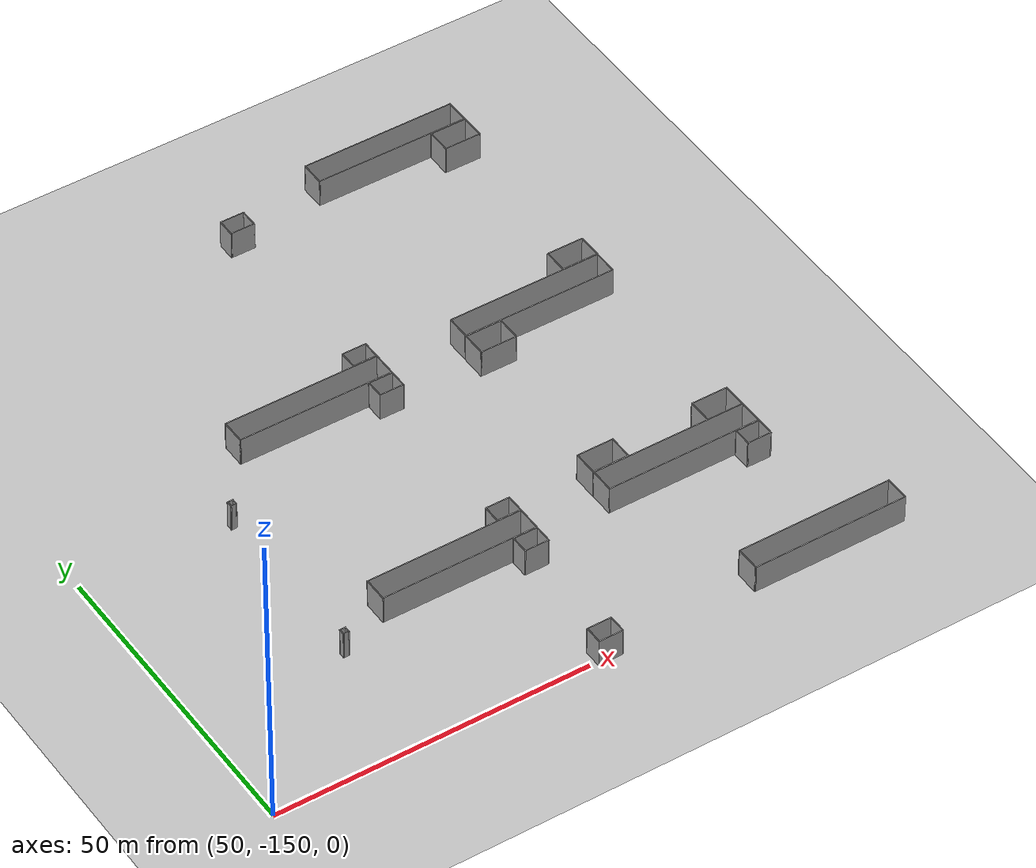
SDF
<sdf version="1.6">
 <world name="default">
  <model name="ground_plane">
   <static>1</static>
   <link name="link">
    <collision name="collision">
     <geometry><plane><normal>0 0 1</normal><size>320 320</size></plane></geometry>
     <surface>
      <contact><collide_bitmask>65535</collide_bitmask></contact>
      <friction><ode><mu>100</mu><mu2>50</mu2></ode></friction>
     </surface>
    </collision>
    <visual name="visual">
     <cast_shadows>0</cast_shadows>
     <geometry><plane><normal>0 0 1</normal><size>320 320</size></plane></geometry>
     <material>
      <script><uri>file://media/materials/scripts/gazebo.material</uri><name>Gazebo/Grey</name></script>
     </material>
    </visual>
   </link>
  </model>
  <model name="base4x25_7">
   <pose>130.931 -50.5067 0 0 -0 0</pose>
   <link name="Wall_11">
    <collision name="Wall_11_Collision">
     <geometry><box><size>4 0.15 6.555</size></box></geometry>
     <pose>0 0 1.25 0 -0 0</pose>
    </collision>
    <visual name="Wall_11_Visual">
     <pose>0 0 1.25 0 -0 0</pose>
     <geometry><box><size>4 0.15 6.555</size></box></geometry>
     <material>
      <script><uri>file://media/materials/scripts/gazebo.material</uri><name>Gazebo/Grey</name></script>
      <ambient>1 1 1 1</ambient>
     </material>
     <meta><layer>0</layer></meta>
    </visual>
    <pose>-12.425 0 0 0 -0 -1.5708</pose>
   </link>
   <link name="Wall_12">
    <collision name="Wall_12_Collision">
     <geometry><box><size>25 0.15 6.555</size></box></geometry>
     <pose>0 0 1.25 0 -0 0</pose>
    </collision>
    <visual name="Wall_12_Visual">
     <pose>0 0 1.25 0 -0 0</pose>
     <geometry><box><size>25 0.15 6.555</size></box></geometry>
     <material>
      <script><uri>file://media/materials/scripts/gazebo.material</uri><name>Gazebo/Grey</name></script>
      <ambient>1 1 1 1</ambient>
     </material>
     <meta><layer>0</layer></meta>
    </visual>
    <pose>0 -1.925 0 0 -0 0</pose>
   </link>
   <link name="Wall_13">
    <collision name="Wall_13_Collision">
     <geometry><box><size>4 0.15 6.555</size></box></geometry>
     <pose>0 0 1.25 0 -0 0</pose>
    </collision>
    <visual name="Wall_13_Visual">
     <pose>0 0 1.25 0 -0 0</pose>
     <geometry><box><size>4 0.15 6.555</size></box></geometry>
     <material>
      <script><uri>file://media/materials/scripts/gazebo.material</uri><name>Gazebo/Grey</name></script>
      <ambient>1 1 1 1</ambient>
     </material>
     <meta><layer>0</layer></meta>
    </visual>
    <pose>12.425 0 0 0 -0 1.5708</pose>
   </link>
   <link name="Wall_14">
    <collision name="Wall_14_Collision">
     <geometry><box><size>25 0.15 6.555</size></box></geometry>
     <pose>0 0 1.25 0 -0 0</pose>
    </collision>
    <visual name="Wall_14_Visual">
     <pose>0 0 1.25 0 -0 0</pose>
     <geometry><box><size>25 0.15 6.555</size></box></geometry>
     <material>
      <script><uri>file://media/materials/scripts/gazebo.material</uri><name>Gazebo/Grey</name></script>
      <ambient>1 1 1 1</ambient>
     </material>
     <meta><layer>0</layer></meta>
    </visual>
    <pose>0 1.925 0 0 -0 3.14159</pose>
   </link>
   <static>1</static>
  </model>
  <model name="base4x25_8">
   <pose>130.98 -88.9608 0 0 -0 0</pose>
   <link name="Wall_11">
    <collision name="Wall_11_Collision">
     <geometry><box><size>4 0.15 6.555</size></box></geometry>
     <pose>0 0 1.25 0 -0 0</pose>
    </collision>
    <visual name="Wall_11_Visual">
     <pose>0 0 1.25 0 -0 0</pose>
     <geometry><box><size>4 0.15 6.555</size></box></geometry>
     <material>
      <script><uri>file://media/materials/scripts/gazebo.material</uri><name>Gazebo/Grey</name></script>
      <ambient>1 1 1 1</ambient>
     </material>
     <meta><layer>0</layer></meta>
    </visual>
    <pose>-12.425 0 0 0 -0 -1.5708</pose>
   </link>
   <link name="Wall_12">
    <collision name="Wall_12_Collision">
     <geometry><box><size>25 0.15 6.555</size></box></geometry>
     <pose>0 0 1.25 0 -0 0</pose>
    </collision>
    <visual name="Wall_12_Visual">
     <pose>0 0 1.25 0 -0 0</pose>
     <geometry><box><size>25 0.15 6.555</size></box></geometry>
     <material>
      <script><uri>file://media/materials/scripts/gazebo.material</uri><name>Gazebo/Grey</name></script>
      <ambient>1 1 1 1</ambient>
     </material>
     <meta><layer>0</layer></meta>
    </visual>
    <pose>0 -1.925 0 0 -0 0</pose>
   </link>
   <link name="Wall_13">
    <collision name="Wall_13_Collision">
     <geometry><box><size>4 0.15 6.555</size></box></geometry>
     <pose>0 0 1.25 0 -0 0</pose>
    </collision>
    <visual name="Wall_13_Visual">
     <pose>0 0 1.25 0 -0 0</pose>
     <geometry><box><size>4 0.15 6.555</size></box></geometry>
     <material>
      <script><uri>file://media/materials/scripts/gazebo.material</uri><name>Gazebo/Grey</name></script>
      <ambient>1 1 1 1</ambient>
     </material>
     <meta><layer>0</layer></meta>
    </visual>
    <pose>12.425 0 0 0 -0 1.5708</pose>
   </link>
   <link name="Wall_14">
    <collision name="Wall_14_Collision">
     <geometry><box><size>25 0.15 6.555</size></box></geometry>
     <pose>0 0 1.25 0 -0 0</pose>
    </collision>
    <visual name="Wall_14_Visual">
     <pose>0 0 1.25 0 -0 0</pose>
     <geometry><box><size>25 0.15 6.555</size></box></geometry>
     <material>
      <script><uri>file://media/materials/scripts/gazebo.material</uri><name>Gazebo/Grey</name></script>
      <ambient>1 1 1 1</ambient>
     </material>
     <meta><layer>0</layer></meta>
    </visual>
    <pose>0 1.925 0 0 -0 3.14159</pose>
   </link>
   <static>1</static>
  </model>
  <model name="base4x25_9">
   <pose>130.882 -125.263 0 0 -0 0</pose>
   <link name="Wall_11">
    <collision name="Wall_11_Collision">
     <geometry><box><size>4 0.15 6.555</size></box></geometry>
     <pose>0 0 1.25 0 -0 0</pose>
    </collision>
    <visual name="Wall_11_Visual">
     <pose>0 0 1.25 0 -0 0</pose>
     <geometry><box><size>4 0.15 6.555</size></box></geometry>
     <material>
      <script><uri>file://media/materials/scripts/gazebo.material</uri><name>Gazebo/Grey</name></script>
      <ambient>1 1 1 1</ambient>
     </material>
     <meta><layer>0</layer></meta>
    </visual>
    <pose>-12.425 0 0 0 -0 -1.5708</pose>
   </link>
   <link name="Wall_12">
    <collision name="Wall_12_Collision">
     <geometry><box><size>25 0.15 6.555</size></box></geometry>
     <pose>0 0 1.25 0 -0 0</pose>
    </collision>
    <visual name="Wall_12_Visual">
     <pose>0 0 1.25 0 -0 0</pose>
     <geometry><box><size>25 0.15 6.555</size></box></geometry>
     <material>
      <script><uri>file://media/materials/scripts/gazebo.material</uri><name>Gazebo/Grey</name></script>
      <ambient>1 1 1 1</ambient>
     </material>
     <meta><layer>0</layer></meta>
    </visual>
    <pose>0 -1.925 0 0 -0 0</pose>
   </link>
   <link name="Wall_13">
    <collision name="Wall_13_Collision">
     <geometry><box><size>4 0.15 6.555</size></box></geometry>
     <pose>0 0 1.25 0 -0 0</pose>
    </collision>
    <visual name="Wall_13_Visual">
     <pose>0 0 1.25 0 -0 0</pose>
     <geometry><box><size>4 0.15 6.555</size></box></geometry>
     <material>
      <script><uri>file://media/materials/scripts/gazebo.material</uri><name>Gazebo/Grey</name></script>
      <ambient>1 1 1 1</ambient>
     </material>
     <meta><layer>0</layer></meta>
    </visual>
    <pose>12.425 0 0 0 -0 1.5708</pose>
   </link>
   <link name="Wall_14">
    <collision name="Wall_14_Collision">
     <geometry><box><size>25 0.15 6.555</size></box></geometry>
     <pose>0 0 1.25 0 -0 0</pose>
    </collision>
    <visual name="Wall_14_Visual">
     <pose>0 0 1.25 0 -0 0</pose>
     <geometry><box><size>25 0.15 6.555</size></box></geometry>
     <material>
      <script><uri>file://media/materials/scripts/gazebo.material</uri><name>Gazebo/Grey</name></script>
      <ambient>1 1 1 1</ambient>
     </material>
     <meta><layer>0</layer></meta>
    </visual>
    <pose>0 1.925 0 0 -0 3.14159</pose>
   </link>
   <static>1</static>
  </model>
  <model name="base4x25_15">
   <pose>93.5015 -89.5283 0 0 -0 0</pose>
   <link name="Wall_11">
    <collision name="Wall_11_Collision">
     <geometry><box><size>4 0.15 6.555</size></box></geometry>
     <pose>0 0 1.25 0 -0 0</pose>
    </collision>
    <visual name="Wall_11_Visual">
     <pose>0 0 1.25 0 -0 0</pose>
     <geometry><box><size>4 0.15 6.555</size></box></geometry>
     <material>
      <script><uri>file://media/materials/scripts/gazebo.material</uri><name>Gazebo/Grey</name></script>
      <ambient>1 1 1 1</ambient>
     </material>
     <meta><layer>0</layer></meta>
    </visual>
    <pose>-12.425 0 0 0 -0 -1.5708</pose>
   </link>
   <link name="Wall_12">
    <collision name="Wall_12_Collision">
     <geometry><box><size>25 0.15 6.555</size></box></geometry>
     <pose>0 0 1.25 0 -0 0</pose>
    </collision>
    <visual name="Wall_12_Visual">
     <pose>0 0 1.25 0 -0 0</pose>
     <geometry><box><size>25 0.15 6.555</size></box></geometry>
     <material>
      <script><uri>file://media/materials/scripts/gazebo.material</uri><name>Gazebo/Grey</name></script>
      <ambient>1 1 1 1</ambient>
     </material>
     <meta><layer>0</layer></meta>
    </visual>
    <pose>0 -1.925 0 0 -0 0</pose>
   </link>
   <link name="Wall_13">
    <collision name="Wall_13_Collision">
     <geometry><box><size>4 0.15 6.555</size></box></geometry>
     <pose>0 0 1.25 0 -0 0</pose>
    </collision>
    <visual name="Wall_13_Visual">
     <pose>0 0 1.25 0 -0 0</pose>
     <geometry><box><size>4 0.15 6.555</size></box></geometry>
     <material>
      <script><uri>file://media/materials/scripts/gazebo.material</uri><name>Gazebo/Grey</name></script>
      <ambient>1 1 1 1</ambient>
     </material>
     <meta><layer>0</layer></meta>
    </visual>
    <pose>12.425 0 0 0 -0 1.5708</pose>
   </link>
   <link name="Wall_14">
    <collision name="Wall_14_Collision">
     <geometry><box><size>25 0.15 6.555</size></box></geometry>
     <pose>0 0 1.25 0 -0 0</pose>
    </collision>
    <visual name="Wall_14_Visual">
     <pose>0 0 1.25 0 -0 0</pose>
     <geometry><box><size>25 0.15 6.555</size></box></geometry>
     <material>
      <script><uri>file://media/materials/scripts/gazebo.material</uri><name>Gazebo/Grey</name></script>
      <ambient>1 1 1 1</ambient>
     </material>
     <meta><layer>0</layer></meta>
    </visual>
    <pose>0 1.925 0 0 -0 3.14159</pose>
   </link>
   <static>1</static>
  </model>
  <model name="base4x25_16">
   <pose>93.619 -125.961 0 0 -0 0</pose>
   <link name="Wall_11">
    <collision name="Wall_11_Collision">
     <geometry><box><size>4 0.15 6.555</size></box></geometry>
     <pose>0 0 1.25 0 -0 0</pose>
    </collision>
    <visual name="Wall_11_Visual">
     <pose>0 0 1.25 0 -0 0</pose>
     <geometry><box><size>4 0.15 6.555</size></box></geometry>
     <material>
      <script><uri>file://media/materials/scripts/gazebo.material</uri><name>Gazebo/Grey</name></script>
      <ambient>1 1 1 1</ambient>
     </material>
     <meta><layer>0</layer></meta>
    </visual>
    <pose>-12.425 0 0 0 -0 -1.5708</pose>
   </link>
   <link name="Wall_12">
    <collision name="Wall_12_Collision">
     <geometry><box><size>25 0.15 6.555</size></box></geometry>
     <pose>0 0 1.25 0 -0 0</pose>
    </collision>
    <visual name="Wall_12_Visual">
     <pose>0 0 1.25 0 -0 0</pose>
     <geometry><box><size>25 0.15 6.555</size></box></geometry>
     <material>
      <script><uri>file://media/materials/scripts/gazebo.material</uri><name>Gazebo/Grey</name></script>
      <ambient>1 1 1 1</ambient>
     </material>
     <meta><layer>0</layer></meta>
    </visual>
    <pose>0 -1.925 0 0 -0 0</pose>
   </link>
   <link name="Wall_13">
    <collision name="Wall_13_Collision">
     <geometry><box><size>4 0.15 6.555</size></box></geometry>
     <pose>0 0 1.25 0 -0 0</pose>
    </collision>
    <visual name="Wall_13_Visual">
     <pose>0 0 1.25 0 -0 0</pose>
     <geometry><box><size>4 0.15 6.555</size></box></geometry>
     <material>
      <script><uri>file://media/materials/scripts/gazebo.material</uri><name>Gazebo/Grey</name></script>
      <ambient>1 1 1 1</ambient>
     </material>
     <meta><layer>0</layer></meta>
    </visual>
    <pose>12.425 0 0 0 -0 1.5708</pose>
   </link>
   <link name="Wall_14">
    <collision name="Wall_14_Collision">
     <geometry><box><size>25 0.15 6.555</size></box></geometry>
     <pose>0 0 1.25 0 -0 0</pose>
    </collision>
    <visual name="Wall_14_Visual">
     <pose>0 0 1.25 0 -0 0</pose>
     <geometry><box><size>25 0.15 6.555</size></box></geometry>
     <material>
      <script><uri>file://media/materials/scripts/gazebo.material</uri><name>Gazebo/Grey</name></script>
      <ambient>1 1 1 1</ambient>
     </material>
     <meta><layer>0</layer></meta>
    </visual>
    <pose>0 1.925 0 0 -0 3.14159</pose>
   </link>
   <static>1</static>
  </model>
  <model name="box_1mx1m_clone_9">
   <pose>73.696 -101.279 0 0 -0 0</pose>
   <link name="Wall_10">
    <collision name="Wall_10_Collision">
     <geometry><box><size>1 0.15 6.555</size></box></geometry>
     <pose>0 0 1.25 0 -0 0</pose>
    </collision>
    <visual name="Wall_10_Visual">
     <pose>0 0 1.25 0 -0 0</pose>
     <geometry><box><size>1 0.15 6.555</size></box></geometry>
     <material>
      <script><uri>file://media/materials/scripts/gazebo.material</uri><name>Gazebo/Grey</name></script>
      <ambient>1 1 1 1</ambient>
     </material>
     <meta><layer>0</layer></meta>
    </visual>
    <pose>-0.425 0 0 0 -0 -1.5708</pose>
   </link>
   <link name="Wall_11">
    <collision name="Wall_11_Collision">
     <geometry><box><size>1 0.15 6.555</size></box></geometry>
     <pose>0 0 1.25 0 -0 0</pose>
    </collision>
    <visual name="Wall_11_Visual">
     <pose>0 0 1.25 0 -0 0</pose>
     <geometry><box><size>1 0.15 6.555</size></box></geometry>
     <material>
      <script><uri>file://media/materials/scripts/gazebo.material</uri><name>Gazebo/Grey</name></script>
      <ambient>1 1 1 1</ambient>
     </material>
     <meta><layer>0</layer></meta>
    </visual>
    <pose>0 -0.425 0 0 -0 0</pose>
   </link>
   <link name="Wall_12">
    <collision name="Wall_12_Collision">
     <geometry><box><size>1 0.15 6.555</size></box></geometry>
     <pose>0 0 1.25 0 -0 0</pose>
    </collision>
    <visual name="Wall_12_Visual">
     <pose>0 0 1.25 0 -0 0</pose>
     <geometry><box><size>1 0.15 6.555</size></box></geometry>
     <material>
      <script><uri>file://media/materials/scripts/gazebo.material</uri><name>Gazebo/Grey</name></script>
      <ambient>1 1 1 1</ambient>
     </material>
     <meta><layer>0</layer></meta>
    </visual>
    <pose>0.425 0 0 0 -0 1.5708</pose>
   </link>
   <link name="Wall_13">
    <collision name="Wall_13_Collision">
     <geometry><box><size>1 0.15 6.555</size></box></geometry>
     <pose>0 0 1.25 0 -0 0</pose>
    </collision>
    <visual name="Wall_13_Visual">
     <pose>0 0 1.25 0 -0 0</pose>
     <geometry><box><size>1 0.15 6.555</size></box></geometry>
     <material>
      <script><uri>file://media/materials/scripts/gazebo.material</uri><name>Gazebo/Grey</name></script>
      <ambient>1 1 1 1</ambient>
     </material>
     <meta><layer>0</layer></meta>
    </visual>
    <pose>0 0.425 0 0 -0 3.14159</pose>
   </link>
   <static>1</static>
  </model>
  <model name="box_1mx1m_clone_10">
   <pose>73.6242 -130.158 0 0 -0 0</pose>
   <link name="Wall_10">
    <collision name="Wall_10_Collision">
     <geometry><box><size>1 0.15 6.555</size></box></geometry>
     <pose>0 0 1.25 0 -0 0</pose>
    </collision>
    <visual name="Wall_10_Visual">
     <pose>0 0 1.25 0 -0 0</pose>
     <geometry><box><size>1 0.15 6.555</size></box></geometry>
     <material>
      <script><uri>file://media/materials/scripts/gazebo.material</uri><name>Gazebo/Grey</name></script>
      <ambient>1 1 1 1</ambient>
     </material>
     <meta><layer>0</layer></meta>
    </visual>
    <pose>-0.425 0 0 0 -0 -1.5708</pose>
   </link>
   <link name="Wall_11">
    <collision name="Wall_11_Collision">
     <geometry><box><size>1 0.15 6.555</size></box></geometry>
     <pose>0 0 1.25 0 -0 0</pose>
    </collision>
    <visual name="Wall_11_Visual">
     <pose>0 0 1.25 0 -0 0</pose>
     <geometry><box><size>1 0.15 6.555</size></box></geometry>
     <material>
      <script><uri>file://media/materials/scripts/gazebo.material</uri><name>Gazebo/Grey</name></script>
      <ambient>1 1 1 1</ambient>
     </material>
     <meta><layer>0</layer></meta>
    </visual>
    <pose>0 -0.425 0 0 -0 0</pose>
   </link>
   <link name="Wall_12">
    <collision name="Wall_12_Collision">
     <geometry><box><size>1 0.15 6.555</size></box></geometry>
     <pose>0 0 1.25 0 -0 0</pose>
    </collision>
    <visual name="Wall_12_Visual">
     <pose>0 0 1.25 0 -0 0</pose>
     <geometry><box><size>1 0.15 6.555</size></box></geometry>
     <material>
      <script><uri>file://media/materials/scripts/gazebo.material</uri><name>Gazebo/Grey</name></script>
      <ambient>1 1 1 1</ambient>
     </material>
     <meta><layer>0</layer></meta>
    </visual>
    <pose>0.425 0 0 0 -0 1.5708</pose>
   </link>
   <link name="Wall_13">
    <collision name="Wall_13_Collision">
     <geometry><box><size>1 0.15 6.555</size></box></geometry>
     <pose>0 0 1.25 0 -0 0</pose>
    </collision>
    <visual name="Wall_13_Visual">
     <pose>0 0 1.25 0 -0 0</pose>
     <geometry><box><size>1 0.15 6.555</size></box></geometry>
     <material>
      <script><uri>file://media/materials/scripts/gazebo.material</uri><name>Gazebo/Grey</name></script>
      <ambient>1 1 1 1</ambient>
     </material>
     <meta><layer>0</layer></meta>
    </visual>
    <pose>0 0.425 0 0 -0 3.14159</pose>
   </link>
   <static>1</static>
  </model>
  <model name="base4x6_13_clone_4">
   <pose>140.462 -54.4994 0 0 -0 0</pose>
   <link name="Wall_23">
    <collision name="Wall_23_Collision">
     <geometry><box><size>4 0.15 6.555</size></box></geometry>
     <pose>0 0 1.25 0 -0 0</pose>
    </collision>
    <visual name="Wall_23_Visual">
     <pose>0 0 1.25 0 -0 0</pose>
     <geometry><box><size>4 0.15 6.555</size></box></geometry>
     <material>
      <script><uri>file://media/materials/scripts/gazebo.material</uri><name>Gazebo/Grey</name></script>
      <ambient>1 1 1 1</ambient>
     </material>
     <meta><layer>0</layer></meta>
    </visual>
    <pose>-2.925 0 0 0 -0 -1.5708</pose>
   </link>
   <link name="Wall_24">
    <collision name="Wall_24_Collision">
     <geometry><box><size>6 0.15 6.555</size></box></geometry>
     <pose>0 0 1.25 0 -0 0</pose>
    </collision>
    <visual name="Wall_24_Visual">
     <pose>0 0 1.25 0 -0 0</pose>
     <geometry><box><size>6 0.15 6.555</size></box></geometry>
     <material>
      <script><uri>file://media/materials/scripts/gazebo.material</uri><name>Gazebo/Grey</name></script>
      <ambient>1 1 1 1</ambient>
     </material>
     <meta><layer>0</layer></meta>
    </visual>
    <pose>-0 -1.925 0 0 -0 0</pose>
   </link>
   <link name="Wall_25">
    <collision name="Wall_25_Collision">
     <geometry><box><size>4 0.15 6.555</size></box></geometry>
     <pose>0 0 1.25 0 -0 0</pose>
    </collision>
    <visual name="Wall_25_Visual">
     <pose>0 0 1.25 0 -0 0</pose>
     <geometry><box><size>4 0.15 6.555</size></box></geometry>
     <material>
      <script><uri>file://media/materials/scripts/gazebo.material</uri><name>Gazebo/Grey</name></script>
      <ambient>1 1 1 1</ambient>
     </material>
     <meta><layer>0</layer></meta>
    </visual>
    <pose>2.925 0 0 0 -0 1.5708</pose>
   </link>
   <link name="Wall_26">
    <collision name="Wall_26_Collision">
     <geometry><box><size>6 0.15 6.555</size></box></geometry>
     <pose>0 0 1.25 0 -0 0</pose>
    </collision>
    <visual name="Wall_26_Visual">
     <pose>0 0 1.25 0 -0 0</pose>
     <geometry><box><size>6 0.15 6.555</size></box></geometry>
     <material>
      <script><uri>file://media/materials/scripts/gazebo.material</uri><name>Gazebo/Grey</name></script>
      <ambient>1 1 1 1</ambient>
     </material>
     <meta><layer>0</layer></meta>
    </visual>
    <pose>-0 1.925 0 0 -0 3.14159</pose>
   </link>
   <static>1</static>
  </model>
  <model name="base4x6_13_clone_5">
   <pose>140.496 -84.9895 0 0 -0 0</pose>
   <link name="Wall_23">
    <collision name="Wall_23_Collision">
     <geometry><box><size>4 0.15 6.555</size></box></geometry>
     <pose>0 0 1.25 0 -0 0</pose>
    </collision>
    <visual name="Wall_23_Visual">
     <pose>0 0 1.25 0 -0 0</pose>
     <geometry><box><size>4 0.15 6.555</size></box></geometry>
     <material>
      <script><uri>file://media/materials/scripts/gazebo.material</uri><name>Gazebo/Grey</name></script>
      <ambient>1 1 1 1</ambient>
     </material>
     <meta><layer>0</layer></meta>
    </visual>
    <pose>-2.925 0 0 0 -0 -1.5708</pose>
   </link>
   <link name="Wall_24">
    <collision name="Wall_24_Collision">
     <geometry><box><size>6 0.15 6.555</size></box></geometry>
     <pose>0 0 1.25 0 -0 0</pose>
    </collision>
    <visual name="Wall_24_Visual">
     <pose>0 0 1.25 0 -0 0</pose>
     <geometry><box><size>6 0.15 6.555</size></box></geometry>
     <material>
      <script><uri>file://media/materials/scripts/gazebo.material</uri><name>Gazebo/Grey</name></script>
      <ambient>1 1 1 1</ambient>
     </material>
     <meta><layer>0</layer></meta>
    </visual>
    <pose>-0 -1.925 0 0 -0 0</pose>
   </link>
   <link name="Wall_25">
    <collision name="Wall_25_Collision">
     <geometry><box><size>4 0.15 6.555</size></box></geometry>
     <pose>0 0 1.25 0 -0 0</pose>
    </collision>
    <visual name="Wall_25_Visual">
     <pose>0 0 1.25 0 -0 0</pose>
     <geometry><box><size>4 0.15 6.555</size></box></geometry>
     <material>
      <script><uri>file://media/materials/scripts/gazebo.material</uri><name>Gazebo/Grey</name></script>
      <ambient>1 1 1 1</ambient>
     </material>
     <meta><layer>0</layer></meta>
    </visual>
    <pose>2.925 0 0 0 -0 1.5708</pose>
   </link>
   <link name="Wall_26">
    <collision name="Wall_26_Collision">
     <geometry><box><size>6 0.15 6.555</size></box></geometry>
     <pose>0 0 1.25 0 -0 0</pose>
    </collision>
    <visual name="Wall_26_Visual">
     <pose>0 0 1.25 0 -0 0</pose>
     <geometry><box><size>6 0.15 6.555</size></box></geometry>
     <material>
      <script><uri>file://media/materials/scripts/gazebo.material</uri><name>Gazebo/Grey</name></script>
      <ambient>1 1 1 1</ambient>
     </material>
     <meta><layer>0</layer></meta>
    </visual>
    <pose>-0 1.925 0 0 -0 3.14159</pose>
   </link>
   <static>1</static>
  </model>
  <model name="base4x6_13_clone_6">
   <pose>140.341 -121.396 0 0 -0 0</pose>
   <link name="Wall_23">
    <collision name="Wall_23_Collision">
     <geometry><box><size>4 0.15 6.555</size></box></geometry>
     <pose>0 0 1.25 0 -0 0</pose>
    </collision>
    <visual name="Wall_23_Visual">
     <pose>0 0 1.25 0 -0 0</pose>
     <geometry><box><size>4 0.15 6.555</size></box></geometry>
     <material>
      <script><uri>file://media/materials/scripts/gazebo.material</uri><name>Gazebo/Grey</name></script>
      <ambient>1 1 1 1</ambient>
     </material>
     <meta><layer>0</layer></meta>
    </visual>
    <pose>-2.925 0 0 0 -0 -1.5708</pose>
   </link>
   <link name="Wall_24">
    <collision name="Wall_24_Collision">
     <geometry><box><size>6 0.15 6.555</size></box></geometry>
     <pose>0 0 1.25 0 -0 0</pose>
    </collision>
    <visual name="Wall_24_Visual">
     <pose>0 0 1.25 0 -0 0</pose>
     <geometry><box><size>6 0.15 6.555</size></box></geometry>
     <material>
      <script><uri>file://media/materials/scripts/gazebo.material</uri><name>Gazebo/Grey</name></script>
      <ambient>1 1 1 1</ambient>
     </material>
     <meta><layer>0</layer></meta>
    </visual>
    <pose>-0 -1.925 0 0 -0 0</pose>
   </link>
   <link name="Wall_25">
    <collision name="Wall_25_Collision">
     <geometry><box><size>4 0.15 6.555</size></box></geometry>
     <pose>0 0 1.25 0 -0 0</pose>
    </collision>
    <visual name="Wall_25_Visual">
     <pose>0 0 1.25 0 -0 0</pose>
     <geometry><box><size>4 0.15 6.555</size></box></geometry>
     <material>
      <script><uri>file://media/materials/scripts/gazebo.material</uri><name>Gazebo/Grey</name></script>
      <ambient>1 1 1 1</ambient>
     </material>
     <meta><layer>0</layer></meta>
    </visual>
    <pose>2.925 0 0 0 -0 1.5708</pose>
   </link>
   <link name="Wall_26">
    <collision name="Wall_26_Collision">
     <geometry><box><size>6 0.15 6.555</size></box></geometry>
     <pose>0 0 1.25 0 -0 0</pose>
    </collision>
    <visual name="Wall_26_Visual">
     <pose>0 0 1.25 0 -0 0</pose>
     <geometry><box><size>6 0.15 6.555</size></box></geometry>
     <material>
      <script><uri>file://media/materials/scripts/gazebo.material</uri><name>Gazebo/Grey</name></script>
      <ambient>1 1 1 1</ambient>
     </material>
     <meta><layer>0</layer></meta>
    </visual>
    <pose>-0 1.925 0 0 -0 3.14159</pose>
   </link>
   <static>1</static>
  </model>
  <model name="base4x6_13_clone_7">
   <pose>121.336 -121.267 0 0 -0 0</pose>
   <link name="Wall_23">
    <collision name="Wall_23_Collision">
     <geometry><box><size>4 0.15 6.555</size></box></geometry>
     <pose>0 0 1.25 0 -0 0</pose>
    </collision>
    <visual name="Wall_23_Visual">
     <pose>0 0 1.25 0 -0 0</pose>
     <geometry><box><size>4 0.15 6.555</size></box></geometry>
     <material>
      <script><uri>file://media/materials/scripts/gazebo.material</uri><name>Gazebo/Grey</name></script>
      <ambient>1 1 1 1</ambient>
     </material>
     <meta><layer>0</layer></meta>
    </visual>
    <pose>-2.925 0 0 0 -0 -1.5708</pose>
   </link>
   <link name="Wall_24">
    <collision name="Wall_24_Collision">
     <geometry><box><size>6 0.15 6.555</size></box></geometry>
     <pose>0 0 1.25 0 -0 0</pose>
    </collision>
    <visual name="Wall_24_Visual">
     <pose>0 0 1.25 0 -0 0</pose>
     <geometry><box><size>6 0.15 6.555</size></box></geometry>
     <material>
      <script><uri>file://media/materials/scripts/gazebo.material</uri><name>Gazebo/Grey</name></script>
      <ambient>1 1 1 1</ambient>
     </material>
     <meta><layer>0</layer></meta>
    </visual>
    <pose>-0 -1.925 0 0 -0 0</pose>
   </link>
   <link name="Wall_25">
    <collision name="Wall_25_Collision">
     <geometry><box><size>4 0.15 6.555</size></box></geometry>
     <pose>0 0 1.25 0 -0 0</pose>
    </collision>
    <visual name="Wall_25_Visual">
     <pose>0 0 1.25 0 -0 0</pose>
     <geometry><box><size>4 0.15 6.555</size></box></geometry>
     <material>
      <script><uri>file://media/materials/scripts/gazebo.material</uri><name>Gazebo/Grey</name></script>
      <ambient>1 1 1 1</ambient>
     </material>
     <meta><layer>0</layer></meta>
    </visual>
    <pose>2.925 0 0 0 -0 1.5708</pose>
   </link>
   <link name="Wall_26">
    <collision name="Wall_26_Collision">
     <geometry><box><size>6 0.15 6.555</size></box></geometry>
     <pose>0 0 1.25 0 -0 0</pose>
    </collision>
    <visual name="Wall_26_Visual">
     <pose>0 0 1.25 0 -0 0</pose>
     <geometry><box><size>6 0.15 6.555</size></box></geometry>
     <material>
      <script><uri>file://media/materials/scripts/gazebo.material</uri><name>Gazebo/Grey</name></script>
      <ambient>1 1 1 1</ambient>
     </material>
     <meta><layer>0</layer></meta>
    </visual>
    <pose>-0 1.925 0 0 -0 3.14159</pose>
   </link>
   <static>1</static>
  </model>
  <model name="base4x6_13_clone_8">
   <pose>121.479 -92.9592 0 0 -0 0</pose>
   <link name="Wall_23">
    <collision name="Wall_23_Collision">
     <geometry><box><size>4 0.15 6.555</size></box></geometry>
     <pose>0 0 1.25 0 -0 0</pose>
    </collision>
    <visual name="Wall_23_Visual">
     <pose>0 0 1.25 0 -0 0</pose>
     <geometry><box><size>4 0.15 6.555</size></box></geometry>
     <material>
      <script><uri>file://media/materials/scripts/gazebo.material</uri><name>Gazebo/Grey</name></script>
      <ambient>1 1 1 1</ambient>
     </material>
     <meta><layer>0</layer></meta>
    </visual>
    <pose>-2.925 0 0 0 -0 -1.5708</pose>
   </link>
   <link name="Wall_24">
    <collision name="Wall_24_Collision">
     <geometry><box><size>6 0.15 6.555</size></box></geometry>
     <pose>0 0 1.25 0 -0 0</pose>
    </collision>
    <visual name="Wall_24_Visual">
     <pose>0 0 1.25 0 -0 0</pose>
     <geometry><box><size>6 0.15 6.555</size></box></geometry>
     <material>
      <script><uri>file://media/materials/scripts/gazebo.material</uri><name>Gazebo/Grey</name></script>
      <ambient>1 1 1 1</ambient>
     </material>
     <meta><layer>0</layer></meta>
    </visual>
    <pose>-0 -1.925 0 0 -0 0</pose>
   </link>
   <link name="Wall_25">
    <collision name="Wall_25_Collision">
     <geometry><box><size>4 0.15 6.555</size></box></geometry>
     <pose>0 0 1.25 0 -0 0</pose>
    </collision>
    <visual name="Wall_25_Visual">
     <pose>0 0 1.25 0 -0 0</pose>
     <geometry><box><size>4 0.15 6.555</size></box></geometry>
     <material>
      <script><uri>file://media/materials/scripts/gazebo.material</uri><name>Gazebo/Grey</name></script>
      <ambient>1 1 1 1</ambient>
     </material>
     <meta><layer>0</layer></meta>
    </visual>
    <pose>2.925 0 0 0 -0 1.5708</pose>
   </link>
   <link name="Wall_26">
    <collision name="Wall_26_Collision">
     <geometry><box><size>6 0.15 6.555</size></box></geometry>
     <pose>0 0 1.25 0 -0 0</pose>
    </collision>
    <visual name="Wall_26_Visual">
     <pose>0 0 1.25 0 -0 0</pose>
     <geometry><box><size>6 0.15 6.555</size></box></geometry>
     <material>
      <script><uri>file://media/materials/scripts/gazebo.material</uri><name>Gazebo/Grey</name></script>
      <ambient>1 1 1 1</ambient>
     </material>
     <meta><layer>0</layer></meta>
    </visual>
    <pose>-0 1.925 0 0 -0 3.14159</pose>
   </link>
   <static>1</static>
  </model>
  <model name="base3x4_3_clone_9">
   <pose>103.982 -53.5299 0 0 -0 0</pose>
   <link name="Wall_18">
    <collision name="Wall_18_Collision">
     <geometry><box><size>3 0.15 6.555</size></box></geometry>
     <pose>0 0 1.25 0 -0 0</pose>
    </collision>
    <visual name="Wall_18_Visual">
     <pose>0 0 1.25 0 -0 0</pose>
     <geometry><box><size>3 0.15 6.555</size></box></geometry>
     <material>
      <script><uri>file://media/materials/scripts/gazebo.material</uri><name>Gazebo/Grey</name></script>
      <ambient>1 1 1 1</ambient>
     </material>
     <meta><layer>0</layer></meta>
    </visual>
    <pose>-1.925 -0 0 0 -0 -1.5708</pose>
   </link>
   <link name="Wall_19">
    <collision name="Wall_19_Collision">
     <geometry><box><size>4 0.15 6.555</size></box></geometry>
     <pose>0 0 1.25 0 -0 0</pose>
    </collision>
    <visual name="Wall_19_Visual">
     <pose>0 0 1.25 0 -0 0</pose>
     <geometry><box><size>4 0.15 6.555</size></box></geometry>
     <material>
      <script><uri>file://media/materials/scripts/gazebo.material</uri><name>Gazebo/Grey</name></script>
      <ambient>1 1 1 1</ambient>
     </material>
     <meta><layer>0</layer></meta>
    </visual>
    <pose>-0 -1.425 0 0 -0 0</pose>
   </link>
   <link name="Wall_20">
    <collision name="Wall_20_Collision">
     <geometry><box><size>3 0.15 6.555</size></box></geometry>
     <pose>0 0 1.25 0 -0 0</pose>
    </collision>
    <visual name="Wall_20_Visual">
     <pose>0 0 1.25 0 -0 0</pose>
     <geometry><box><size>3 0.15 6.555</size></box></geometry>
     <material>
      <script><uri>file://media/materials/scripts/gazebo.material</uri><name>Gazebo/Grey</name></script>
      <ambient>1 1 1 1</ambient>
     </material>
     <meta><layer>0</layer></meta>
    </visual>
    <pose>1.925 -0 0 0 -0 1.5708</pose>
   </link>
   <link name="Wall_21">
    <collision name="Wall_21_Collision">
     <geometry><box><size>4 0.15 6.555</size></box></geometry>
     <pose>0 0 1.25 0 -0 0</pose>
    </collision>
    <visual name="Wall_21_Visual">
     <pose>0 0 1.25 0 -0 0</pose>
     <geometry><box><size>4 0.15 6.555</size></box></geometry>
     <material>
      <script><uri>file://media/materials/scripts/gazebo.material</uri><name>Gazebo/Grey</name></script>
      <ambient>1 1 1 1</ambient>
     </material>
     <meta><layer>0</layer></meta>
    </visual>
    <pose>-0 1.425 0 0 -0 3.14159</pose>
   </link>
   <static>1</static>
  </model>
  <model name="base3x4_3_clone_10">
   <pose>103.997 -93.0151 0 0 -0 0</pose>
   <link name="Wall_18">
    <collision name="Wall_18_Collision">
     <geometry><box><size>3 0.15 6.555</size></box></geometry>
     <pose>0 0 1.25 0 -0 0</pose>
    </collision>
    <visual name="Wall_18_Visual">
     <pose>0 0 1.25 0 -0 0</pose>
     <geometry><box><size>3 0.15 6.555</size></box></geometry>
     <material>
      <script><uri>file://media/materials/scripts/gazebo.material</uri><name>Gazebo/Grey</name></script>
      <ambient>1 1 1 1</ambient>
     </material>
     <meta><layer>0</layer></meta>
    </visual>
    <pose>-1.925 -0 0 0 -0 -1.5708</pose>
   </link>
   <link name="Wall_19">
    <collision name="Wall_19_Collision">
     <geometry><box><size>4 0.15 6.555</size></box></geometry>
     <pose>0 0 1.25 0 -0 0</pose>
    </collision>
    <visual name="Wall_19_Visual">
     <pose>0 0 1.25 0 -0 0</pose>
     <geometry><box><size>4 0.15 6.555</size></box></geometry>
     <material>
      <script><uri>file://media/materials/scripts/gazebo.material</uri><name>Gazebo/Grey</name></script>
      <ambient>1 1 1 1</ambient>
     </material>
     <meta><layer>0</layer></meta>
    </visual>
    <pose>-0 -1.425 0 0 -0 0</pose>
   </link>
   <link name="Wall_20">
    <collision name="Wall_20_Collision">
     <geometry><box><size>3 0.15 6.555</size></box></geometry>
     <pose>0 0 1.25 0 -0 0</pose>
    </collision>
    <visual name="Wall_20_Visual">
     <pose>0 0 1.25 0 -0 0</pose>
     <geometry><box><size>3 0.15 6.555</size></box></geometry>
     <material>
      <script><uri>file://media/materials/scripts/gazebo.material</uri><name>Gazebo/Grey</name></script>
      <ambient>1 1 1 1</ambient>
     </material>
     <meta><layer>0</layer></meta>
    </visual>
    <pose>1.925 -0 0 0 -0 1.5708</pose>
   </link>
   <link name="Wall_21">
    <collision name="Wall_21_Collision">
     <geometry><box><size>4 0.15 6.555</size></box></geometry>
     <pose>0 0 1.25 0 -0 0</pose>
    </collision>
    <visual name="Wall_21_Visual">
     <pose>0 0 1.25 0 -0 0</pose>
     <geometry><box><size>4 0.15 6.555</size></box></geometry>
     <material>
      <script><uri>file://media/materials/scripts/gazebo.material</uri><name>Gazebo/Grey</name></script>
      <ambient>1 1 1 1</ambient>
     </material>
     <meta><layer>0</layer></meta>
    </visual>
    <pose>-0 1.425 0 0 -0 3.14159</pose>
   </link>
   <static>1</static>
  </model>
  <model name="base3x4_3_clone_11">
   <pose>103.995 -86.0517 0 0 -0 0</pose>
   <link name="Wall_18">
    <collision name="Wall_18_Collision">
     <geometry><box><size>3 0.15 6.555</size></box></geometry>
     <pose>0 0 1.25 0 -0 0</pose>
    </collision>
    <visual name="Wall_18_Visual">
     <pose>0 0 1.25 0 -0 0</pose>
     <geometry><box><size>3 0.15 6.555</size></box></geometry>
     <material>
      <script><uri>file://media/materials/scripts/gazebo.material</uri><name>Gazebo/Grey</name></script>
      <ambient>1 1 1 1</ambient>
     </material>
     <meta><layer>0</layer></meta>
    </visual>
    <pose>-1.925 -0 0 0 -0 -1.5708</pose>
   </link>
   <link name="Wall_19">
    <collision name="Wall_19_Collision">
     <geometry><box><size>4 0.15 6.555</size></box></geometry>
     <pose>0 0 1.25 0 -0 0</pose>
    </collision>
    <visual name="Wall_19_Visual">
     <pose>0 0 1.25 0 -0 0</pose>
     <geometry><box><size>4 0.15 6.555</size></box></geometry>
     <material>
      <script><uri>file://media/materials/scripts/gazebo.material</uri><name>Gazebo/Grey</name></script>
      <ambient>1 1 1 1</ambient>
     </material>
     <meta><layer>0</layer></meta>
    </visual>
    <pose>-0 -1.425 0 0 -0 0</pose>
   </link>
   <link name="Wall_20">
    <collision name="Wall_20_Collision">
     <geometry><box><size>3 0.15 6.555</size></box></geometry>
     <pose>0 0 1.25 0 -0 0</pose>
    </collision>
    <visual name="Wall_20_Visual">
     <pose>0 0 1.25 0 -0 0</pose>
     <geometry><box><size>3 0.15 6.555</size></box></geometry>
     <material>
      <script><uri>file://media/materials/scripts/gazebo.material</uri><name>Gazebo/Grey</name></script>
      <ambient>1 1 1 1</ambient>
     </material>
     <meta><layer>0</layer></meta>
    </visual>
    <pose>1.925 -0 0 0 -0 1.5708</pose>
   </link>
   <link name="Wall_21">
    <collision name="Wall_21_Collision">
     <geometry><box><size>4 0.15 6.555</size></box></geometry>
     <pose>0 0 1.25 0 -0 0</pose>
    </collision>
    <visual name="Wall_21_Visual">
     <pose>0 0 1.25 0 -0 0</pose>
     <geometry><box><size>4 0.15 6.555</size></box></geometry>
     <material>
      <script><uri>file://media/materials/scripts/gazebo.material</uri><name>Gazebo/Grey</name></script>
      <ambient>1 1 1 1</ambient>
     </material>
     <meta><layer>0</layer></meta>
    </visual>
    <pose>-0 1.425 0 0 -0 3.14159</pose>
   </link>
   <static>1</static>
  </model>
  <model name="base3x4_3_clone_12">
   <pose>104.13 -122.49 0 0 -0 0</pose>
   <link name="Wall_18">
    <collision name="Wall_18_Collision">
     <geometry><box><size>3 0.15 6.555</size></box></geometry>
     <pose>0 0 1.25 0 -0 0</pose>
    </collision>
    <visual name="Wall_18_Visual">
     <pose>0 0 1.25 0 -0 0</pose>
     <geometry><box><size>3 0.15 6.555</size></box></geometry>
     <material>
      <script><uri>file://media/materials/scripts/gazebo.material</uri><name>Gazebo/Grey</name></script>
      <ambient>1 1 1 1</ambient>
     </material>
     <meta><layer>0</layer></meta>
    </visual>
    <pose>-1.925 -0 0 0 -0 -1.5708</pose>
   </link>
   <link name="Wall_19">
    <collision name="Wall_19_Collision">
     <geometry><box><size>4 0.15 6.555</size></box></geometry>
     <pose>0 0 1.25 0 -0 0</pose>
    </collision>
    <visual name="Wall_19_Visual">
     <pose>0 0 1.25 0 -0 0</pose>
     <geometry><box><size>4 0.15 6.555</size></box></geometry>
     <material>
      <script><uri>file://media/materials/scripts/gazebo.material</uri><name>Gazebo/Grey</name></script>
      <ambient>1 1 1 1</ambient>
     </material>
     <meta><layer>0</layer></meta>
    </visual>
    <pose>-0 -1.425 0 0 -0 0</pose>
   </link>
   <link name="Wall_20">
    <collision name="Wall_20_Collision">
     <geometry><box><size>3 0.15 6.555</size></box></geometry>
     <pose>0 0 1.25 0 -0 0</pose>
    </collision>
    <visual name="Wall_20_Visual">
     <pose>0 0 1.25 0 -0 0</pose>
     <geometry><box><size>3 0.15 6.555</size></box></geometry>
     <material>
      <script><uri>file://media/materials/scripts/gazebo.material</uri><name>Gazebo/Grey</name></script>
      <ambient>1 1 1 1</ambient>
     </material>
     <meta><layer>0</layer></meta>
    </visual>
    <pose>1.925 -0 0 0 -0 1.5708</pose>
   </link>
   <link name="Wall_21">
    <collision name="Wall_21_Collision">
     <geometry><box><size>4 0.15 6.555</size></box></geometry>
     <pose>0 0 1.25 0 -0 0</pose>
    </collision>
    <visual name="Wall_21_Visual">
     <pose>0 0 1.25 0 -0 0</pose>
     <geometry><box><size>4 0.15 6.555</size></box></geometry>
     <material>
      <script><uri>file://media/materials/scripts/gazebo.material</uri><name>Gazebo/Grey</name></script>
      <ambient>1 1 1 1</ambient>
     </material>
     <meta><layer>0</layer></meta>
    </visual>
    <pose>-0 1.425 0 0 -0 3.14159</pose>
   </link>
   <static>1</static>
  </model>
  <model name="base3x4_3_clone_13">
   <pose>104.112 -129.441 0 0 -0 0</pose>
   <link name="Wall_18">
    <collision name="Wall_18_Collision">
     <geometry><box><size>3 0.15 6.555</size></box></geometry>
     <pose>0 0 1.25 0 -0 0</pose>
    </collision>
    <visual name="Wall_18_Visual">
     <pose>0 0 1.25 0 -0 0</pose>
     <geometry><box><size>3 0.15 6.555</size></box></geometry>
     <material>
      <script><uri>file://media/materials/scripts/gazebo.material</uri><name>Gazebo/Grey</name></script>
      <ambient>1 1 1 1</ambient>
     </material>
     <meta><layer>0</layer></meta>
    </visual>
    <pose>-1.925 -0 0 0 -0 -1.5708</pose>
   </link>
   <link name="Wall_19">
    <collision name="Wall_19_Collision">
     <geometry><box><size>4 0.15 6.555</size></box></geometry>
     <pose>0 0 1.25 0 -0 0</pose>
    </collision>
    <visual name="Wall_19_Visual">
     <pose>0 0 1.25 0 -0 0</pose>
     <geometry><box><size>4 0.15 6.555</size></box></geometry>
     <material>
      <script><uri>file://media/materials/scripts/gazebo.material</uri><name>Gazebo/Grey</name></script>
      <ambient>1 1 1 1</ambient>
     </material>
     <meta><layer>0</layer></meta>
    </visual>
    <pose>-0 -1.425 0 0 -0 0</pose>
   </link>
   <link name="Wall_20">
    <collision name="Wall_20_Collision">
     <geometry><box><size>3 0.15 6.555</size></box></geometry>
     <pose>0 0 1.25 0 -0 0</pose>
    </collision>
    <visual name="Wall_20_Visual">
     <pose>0 0 1.25 0 -0 0</pose>
     <geometry><box><size>3 0.15 6.555</size></box></geometry>
     <material>
      <script><uri>file://media/materials/scripts/gazebo.material</uri><name>Gazebo/Grey</name></script>
      <ambient>1 1 1 1</ambient>
     </material>
     <meta><layer>0</layer></meta>
    </visual>
    <pose>1.925 -0 0 0 -0 1.5708</pose>
   </link>
   <link name="Wall_21">
    <collision name="Wall_21_Collision">
     <geometry><box><size>4 0.15 6.555</size></box></geometry>
     <pose>0 0 1.25 0 -0 0</pose>
    </collision>
    <visual name="Wall_21_Visual">
     <pose>0 0 1.25 0 -0 0</pose>
     <geometry><box><size>4 0.15 6.555</size></box></geometry>
     <material>
      <script><uri>file://media/materials/scripts/gazebo.material</uri><name>Gazebo/Grey</name></script>
      <ambient>1 1 1 1</ambient>
     </material>
     <meta><layer>0</layer></meta>
    </visual>
    <pose>-0 1.425 0 0 -0 3.14159</pose>
   </link>
   <static>1</static>
  </model>
  <model name="base3x4_3_clone_14">
   <pose>141.398 -128.741 0 0 -0 0</pose>
   <link name="Wall_18">
    <collision name="Wall_18_Collision">
     <geometry><box><size>3 0.15 6.555</size></box></geometry>
     <pose>0 0 1.25 0 -0 0</pose>
    </collision>
    <visual name="Wall_18_Visual">
     <pose>0 0 1.25 0 -0 0</pose>
     <geometry><box><size>3 0.15 6.555</size></box></geometry>
     <material>
      <script><uri>file://media/materials/scripts/gazebo.material</uri><name>Gazebo/Grey</name></script>
      <ambient>1 1 1 1</ambient>
     </material>
     <meta><layer>0</layer></meta>
    </visual>
    <pose>-1.925 -0 0 0 -0 -1.5708</pose>
   </link>
   <link name="Wall_19">
    <collision name="Wall_19_Collision">
     <geometry><box><size>4 0.15 6.555</size></box></geometry>
     <pose>0 0 1.25 0 -0 0</pose>
    </collision>
    <visual name="Wall_19_Visual">
     <pose>0 0 1.25 0 -0 0</pose>
     <geometry><box><size>4 0.15 6.555</size></box></geometry>
     <material>
      <script><uri>file://media/materials/scripts/gazebo.material</uri><name>Gazebo/Grey</name></script>
      <ambient>1 1 1 1</ambient>
     </material>
     <meta><layer>0</layer></meta>
    </visual>
    <pose>-0 -1.425 0 0 -0 0</pose>
   </link>
   <link name="Wall_20">
    <collision name="Wall_20_Collision">
     <geometry><box><size>3 0.15 6.555</size></box></geometry>
     <pose>0 0 1.25 0 -0 0</pose>
    </collision>
    <visual name="Wall_20_Visual">
     <pose>0 0 1.25 0 -0 0</pose>
     <geometry><box><size>3 0.15 6.555</size></box></geometry>
     <material>
      <script><uri>file://media/materials/scripts/gazebo.material</uri><name>Gazebo/Grey</name></script>
      <ambient>1 1 1 1</ambient>
     </material>
     <meta><layer>0</layer></meta>
    </visual>
    <pose>1.925 -0 0 0 -0 1.5708</pose>
   </link>
   <link name="Wall_21">
    <collision name="Wall_21_Collision">
     <geometry><box><size>4 0.15 6.555</size></box></geometry>
     <pose>0 0 1.25 0 -0 0</pose>
    </collision>
    <visual name="Wall_21_Visual">
     <pose>0 0 1.25 0 -0 0</pose>
     <geometry><box><size>4 0.15 6.555</size></box></geometry>
     <material>
      <script><uri>file://media/materials/scripts/gazebo.material</uri><name>Gazebo/Grey</name></script>
      <ambient>1 1 1 1</ambient>
     </material>
     <meta><layer>0</layer></meta>
    </visual>
    <pose>-0 1.425 0 0 -0 3.14159</pose>
   </link>
   <static>1</static>
  </model>
  <model name="base4x25_17">
   <pose>139.042 -148.612 0 0 -0 0</pose>
   <link name="Wall_11">
    <collision name="Wall_11_Collision">
     <geometry><box><size>4 0.15 6.555</size></box></geometry>
     <pose>0 0 1.25 0 -0 0</pose>
    </collision>
    <visual name="Wall_11_Visual">
     <pose>0 0 1.25 0 -0 0</pose>
     <geometry><box><size>4 0.15 6.555</size></box></geometry>
     <material>
      <script><uri>file://media/materials/scripts/gazebo.material</uri><name>Gazebo/Grey</name></script>
      <ambient>1 1 1 1</ambient>
     </material>
     <meta><layer>0</layer></meta>
    </visual>
    <pose>-12.425 0 0 0 -0 -1.5708</pose>
   </link>
   <link name="Wall_12">
    <collision name="Wall_12_Collision">
     <geometry><box><size>25 0.15 6.555</size></box></geometry>
     <pose>0 0 1.25 0 -0 0</pose>
    </collision>
    <visual name="Wall_12_Visual">
     <pose>0 0 1.25 0 -0 0</pose>
     <geometry><box><size>25 0.15 6.555</size></box></geometry>
     <material>
      <script><uri>file://media/materials/scripts/gazebo.material</uri><name>Gazebo/Grey</name></script>
      <ambient>1 1 1 1</ambient>
     </material>
     <meta><layer>0</layer></meta>
    </visual>
    <pose>0 -1.925 0 0 -0 0</pose>
   </link>
   <link name="Wall_13">
    <collision name="Wall_13_Collision">
     <geometry><box><size>4 0.15 6.555</size></box></geometry>
     <pose>0 0 1.25 0 -0 0</pose>
    </collision>
    <visual name="Wall_13_Visual">
     <pose>0 0 1.25 0 -0 0</pose>
     <geometry><box><size>4 0.15 6.555</size></box></geometry>
     <material>
      <script><uri>file://media/materials/scripts/gazebo.material</uri><name>Gazebo/Grey</name></script>
      <ambient>1 1 1 1</ambient>
     </material>
     <meta><layer>0</layer></meta>
    </visual>
    <pose>12.425 0 0 0 -0 1.5708</pose>
   </link>
   <link name="Wall_14">
    <collision name="Wall_14_Collision">
     <geometry><box><size>25 0.15 6.555</size></box></geometry>
     <pose>0 0 1.25 0 -0 0</pose>
    </collision>
    <visual name="Wall_14_Visual">
     <pose>0 0 1.25 0 -0 0</pose>
     <geometry><box><size>25 0.15 6.555</size></box></geometry>
     <material>
      <script><uri>file://media/materials/scripts/gazebo.material</uri><name>Gazebo/Grey</name></script>
      <ambient>1 1 1 1</ambient>
     </material>
     <meta><layer>0</layer></meta>
    </visual>
    <pose>0 1.925 0 0 -0 3.14159</pose>
   </link>
   <static>1</static>
  </model>
  <model name="base3x4_3_clone_15">
   <pose>103.045 -149.078 0 0 -0 0</pose>
   <link name="Wall_18">
    <collision name="Wall_18_Collision">
     <geometry><box><size>3 0.15 6.555</size></box></geometry>
     <pose>0 0 1.25 0 -0 0</pose>
    </collision>
    <visual name="Wall_18_Visual">
     <pose>0 0 1.25 0 -0 0</pose>
     <geometry><box><size>3 0.15 6.555</size></box></geometry>
     <material>
      <script><uri>file://media/materials/scripts/gazebo.material</uri><name>Gazebo/Grey</name></script>
      <ambient>1 1 1 1</ambient>
     </material>
     <meta><layer>0</layer></meta>
    </visual>
    <pose>-1.925 -0 0 0 -0 -1.5708</pose>
   </link>
   <link name="Wall_19">
    <collision name="Wall_19_Collision">
     <geometry><box><size>4 0.15 6.555</size></box></geometry>
     <pose>0 0 1.25 0 -0 0</pose>
    </collision>
    <visual name="Wall_19_Visual">
     <pose>0 0 1.25 0 -0 0</pose>
     <geometry><box><size>4 0.15 6.555</size></box></geometry>
     <material>
      <script><uri>file://media/materials/scripts/gazebo.material</uri><name>Gazebo/Grey</name></script>
      <ambient>1 1 1 1</ambient>
     </material>
     <meta><layer>0</layer></meta>
    </visual>
    <pose>-0 -1.425 0 0 -0 0</pose>
   </link>
   <link name="Wall_20">
    <collision name="Wall_20_Collision">
     <geometry><box><size>3 0.15 6.555</size></box></geometry>
     <pose>0 0 1.25 0 -0 0</pose>
    </collision>
    <visual name="Wall_20_Visual">
     <pose>0 0 1.25 0 -0 0</pose>
     <geometry><box><size>3 0.15 6.555</size></box></geometry>
     <material>
      <script><uri>file://media/materials/scripts/gazebo.material</uri><name>Gazebo/Grey</name></script>
      <ambient>1 1 1 1</ambient>
     </material>
     <meta><layer>0</layer></meta>
    </visual>
    <pose>1.925 -0 0 0 -0 1.5708</pose>
   </link>
   <link name="Wall_21">
    <collision name="Wall_21_Collision">
     <geometry><box><size>4 0.15 6.555</size></box></geometry>
     <pose>0 0 1.25 0 -0 0</pose>
    </collision>
    <visual name="Wall_21_Visual">
     <pose>0 0 1.25 0 -0 0</pose>
     <geometry><box><size>4 0.15 6.555</size></box></geometry>
     <material>
      <script><uri>file://media/materials/scripts/gazebo.material</uri><name>Gazebo/Grey</name></script>
      <ambient>1 1 1 1</ambient>
     </material>
     <meta><layer>0</layer></meta>
    </visual>
    <pose>-0 1.425 0 0 -0 3.14159</pose>
   </link>
   <static>1</static>
  </model>
 </world>
</sdf>
